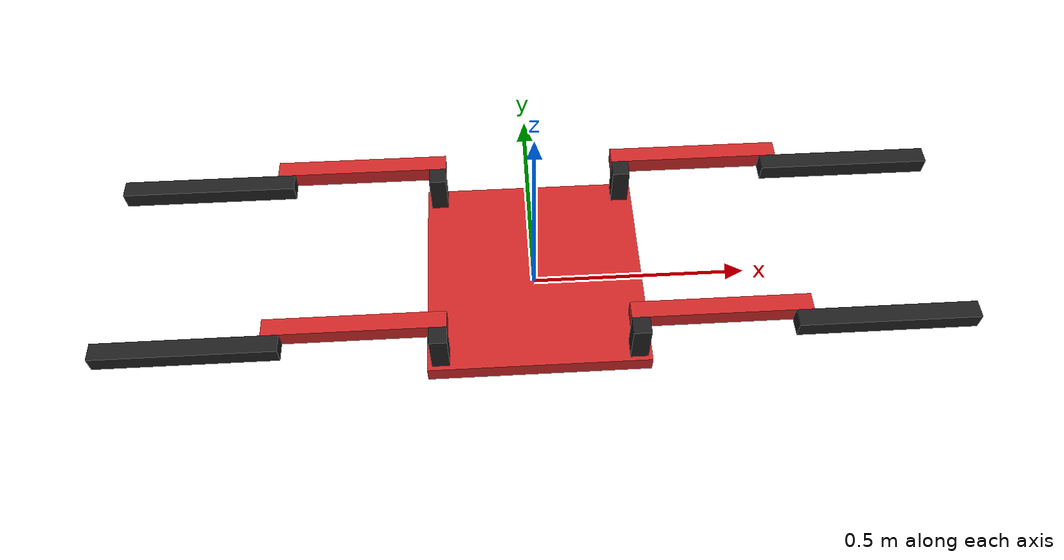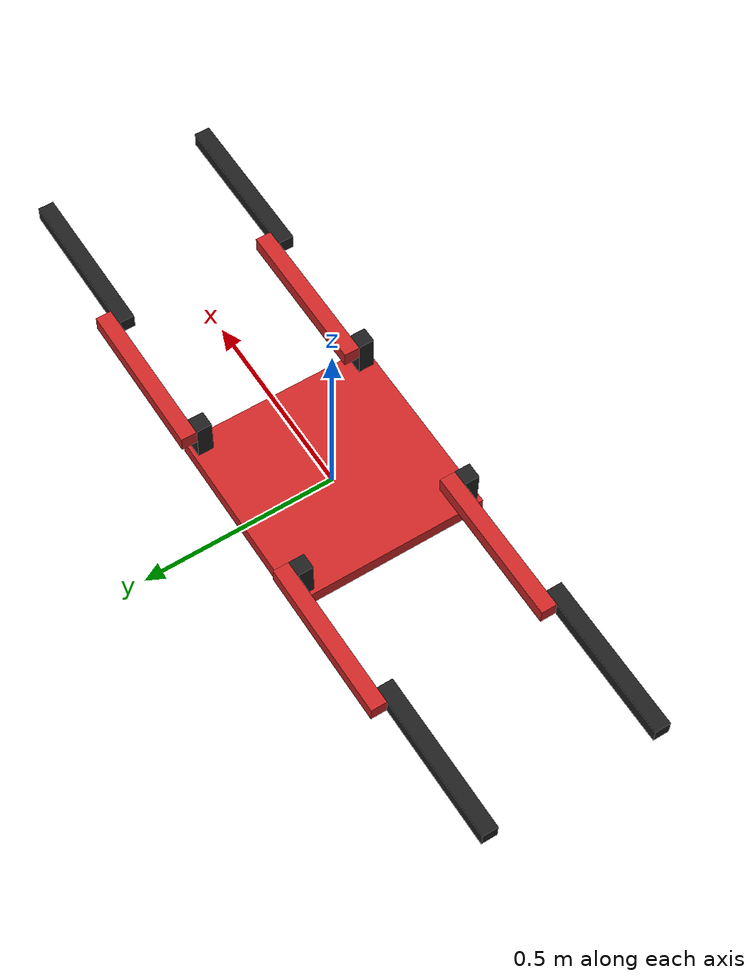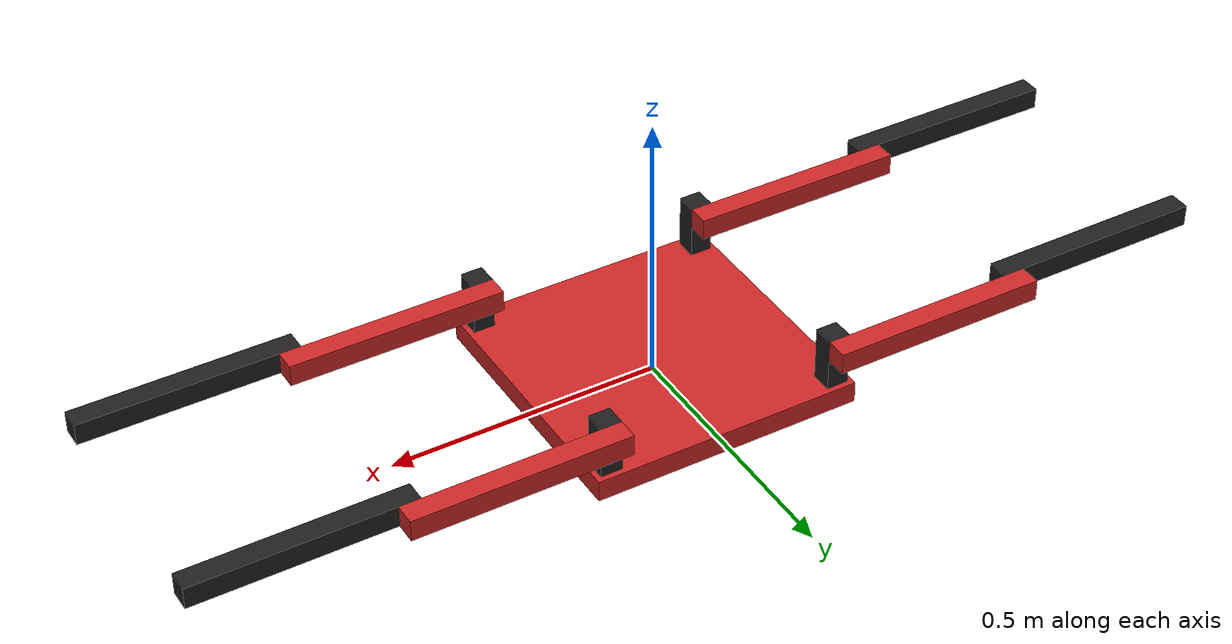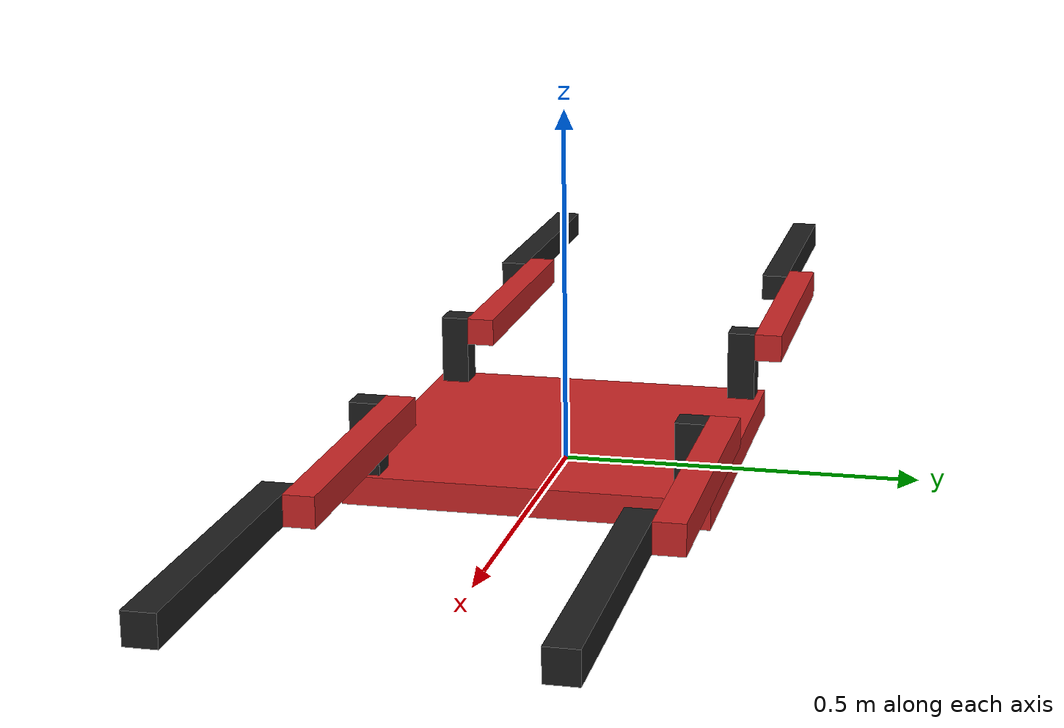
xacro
<?xml version="1.0"?>
<robot xmlns:xacro="http://www.ros.org/wiki/xacro">

	<xacro:include filename="inertial_macros.xacro"/>

	<xacro:property name="damping" value="0.7"/>
	<xacro:property name="friction" value="10"/>
	<xacro:property name="mu1" value="100"/>
	<xacro:property name="mu2" value="100"/>
	<xacro:property name="velocity" value="1"/>
	<xacro:property name="effort" value="1.7"/>
	<xacro:property name="base_mass" value="5"/>
	<xacro:property name="leg_mass" value="1"/>
	<xacro:property name="leg_mass3" value="1"/>
	<xacro:property name="fdir" value="0 0 1"/>

	<link name="base_link">

	</link>

	<!-- STAND -->
	<joint name="stand_joint" type="fixed">
		<parent link="base_link"/>
		<child link="stand_link"/>
		<origin xyz="0 0 0"/>
	</joint>

	<link name="stand_link">
		<visual>
			<origin xyz="0 0 0.02"/>
			<geometry>
				<box size="0.5 0.5 0.04"/>
			</geometry>
		</visual>

		<collision>
			<origin xyz="0 0 0.02"/>
			<geometry>
				<box size="0.5 0.5 0.04"/>
			</geometry>
		</collision>

		<xacro:inertial_box mass="${base_mass}" x="0.5" y="0.5" z="0.04">
			<origin xyz="0 0 0.02" rpy="0 0 0"/>
		</xacro:inertial_box>
	</link>

	<gazebo reference="stand_link">
		<material>Gazebo/Red</material>
		<maxVel>1.0</maxVel>
    	<minDepth>0.01</minDepth>
	</gazebo>

	<!-- LEFT_LEG1_AX1 -->
	<joint name="lleg1_ax1_joint" type="revolute">
		<parent link="stand_link"/>
		<child link="lleg1_ax1_link"/>
		<origin xyz="0.22 0.22 0.12"/>
		<limit effort="${effort}" velocity="${velocity}" lower="${-pi/2}" upper="${pi/2}"/>
		<axis xyz="0 0 1"/>
		<dynamics damping="${damping}" friction="${friction}"/>
	</joint>

	<link name="lleg1_ax1_link">
		<visual>
			<origin xyz="0 0 -0.03"/>
			<geometry>
				<box size="0.04 0.04 0.1"/>
			</geometry>
		</visual>

		<collision>
			<origin xyz="0 0 -0.03"/>
			<geometry>
				<box size="0.04 0.04 0.1"/>
			</geometry>
		</collision>

		<xacro:inertial_box mass="${leg_mass}" x="0.04" y="0.04" z="0.1">
			<origin xyz="0 0 -0.03" rpy="0 0 0"/>
		</xacro:inertial_box>
	</link>

	<gazebo reference="lleg1_ax1_link">
		<material>Gazebo/Black</material>
		<maxVel>1.0</maxVel>
	</gazebo>

	<!-- LEFT_LEG1_AX2 -->
	<joint name="lleg1_ax2_joint" type="revolute">
		<parent link="lleg1_ax1_link"/>
		<child link="lleg1_ax2_link"/>
		<origin xyz="0 0.04 0" rpy="0 ${pi/2} 0"/>
		<limit effort="${effort}" velocity="${velocity}" lower="${-pi/2}" upper="${pi/2}"/>
		<axis xyz="0 1 0"/>
		<dynamics damping="${damping}" friction="${friction}"/>
	</joint>

	<link name="lleg1_ax2_link">
		<visual>
			<origin xyz="0 0 0.18"/>
			<geometry>
				<box size="0.04 0.04 0.4"/>
			</geometry>
		</visual>

		<collision>
			<origin xyz="0 0 0.18"/>
			<geometry>
				<box size="0.04 0.04 0.4"/>
			</geometry>
		</collision>

		<xacro:inertial_box mass="${leg_mass}" x="0.04" y="0.04" z="0.4">
			<origin xyz="0 0 0.18" rpy="0 0 0"/>
		</xacro:inertial_box>
	</link>

	<gazebo reference="lleg1_ax2_link">
		<material>Gazebo/Red</material>
		<maxVel>1.0</maxVel>
	</gazebo>

	<!-- LEFT_LEG1_AX3 -->
	<joint name="lleg1_ax3_joint" type="revolute">
		<parent link="lleg1_ax2_link"/>
		<child link="lleg1_ax3_link"/>
		<origin xyz="0 0 0.36"/>
		<limit effort="${effort}" velocity="${velocity}" lower="${-pi}" upper="${pi}"/>
		<axis xyz="0 1 0"/>
		<dynamics damping="${damping}" friction="${friction}"/>
	</joint>

	<link name="lleg1_ax3_link">
		<visual>
			<origin xyz="0 -0.04 0.18"/>
			<geometry>
				<box size="0.04 0.04 0.4"/>
			</geometry>
		</visual>

		<collision>
			<origin xyz="0 -0.04 0.18"/>
			<geometry>
				<box size="0.04 0.04 0.4"/>
			</geometry>
		</collision>

		<xacro:inertial_box mass="${leg_mass3}" x="0.04" y="0.04" z="0.4">
			<origin xyz="0 -0.04 0.18" rpy="0 0 0"/>
		</xacro:inertial_box>
	</link>

	<gazebo reference="lleg1_ax3_link">
		<material>Gazebo/Black</material>
		<mu1 value="${mu1}"/>
		<mu2 value="${mu2}"/>
		<maxVel>1.0</maxVel>
    	<minDepth>0.04</minDepth>
		<kp>1000000.0</kp>
		<kd>100.0</kd>
	</gazebo>

	<!-- LEFT_LEG2_AX1 -->
	<joint name="lleg2_ax1_joint" type="revolute">
		<parent link="stand_link"/>
		<child link="lleg2_ax1_link"/>
		<origin xyz="0.22 -0.22 0.12"/>
		<limit effort="${effort}" velocity="${velocity}" lower="${-pi/2}" upper="${pi/2}"/>
		<axis xyz="0 0 -1"/>
		<dynamics damping="${damping}" friction="${friction}"/>
	</joint>

	<link name="lleg2_ax1_link">
		<visual>
			<origin xyz="0 0 -0.03"/>
			<geometry>
				<box size="0.04 0.04 0.1"/>
			</geometry>
		</visual>

		<collision>
			<origin xyz="0 0 -0.03"/>
			<geometry>
				<box size="0.04 0.04 0.1"/>
			</geometry>
		</collision>

		<xacro:inertial_box mass="${leg_mass}" x="0.04" y="0.04" z="0.1">
			<origin xyz="0 0 -0.03" rpy="0 0 0"/>
		</xacro:inertial_box>
	</link>

	<gazebo reference="lleg2_ax1_link">
		<material>Gazebo/Black</material>
		<maxVel>1.0</maxVel>
	</gazebo>

	<!-- LEFT_LEG2_AX2 -->
	<joint name="lleg2_ax2_joint" type="revolute">
		<parent link="lleg2_ax1_link"/>
		<child link="lleg2_ax2_link"/>
		<origin xyz="0 0.04 0" rpy="0 ${pi/2} 0"/>
		<limit effort="${effort}" velocity="${velocity}" lower="${-pi/2}" upper="${pi/2}"/>
		<axis xyz="0 1 0"/>
		<dynamics damping="${damping}" friction="${friction}"/>
	</joint>

	<link name="lleg2_ax2_link">
		<visual>
			<origin xyz="0 0 0.18"/>
			<geometry>
				<box size="0.04 0.04 0.4"/>
			</geometry>
		</visual>

		<collision>
			<origin xyz="0 0 0.18"/>
			<geometry>
				<box size="0.04 0.04 0.4"/>
			</geometry>
		</collision>

		<xacro:inertial_box mass="${leg_mass}" x="0.04" y="0.04" z="0.4">
			<origin xyz="0 0 0.18" rpy="0 0 0"/>
		</xacro:inertial_box>
	</link>

	<gazebo reference="lleg2_ax2_link">
		<material>Gazebo/Red</material>
		<maxVel>1.0</maxVel>
	</gazebo>

	<!-- LEFT_LEG2_AX3 -->
	<joint name="lleg2_ax3_joint" type="revolute">
		<parent link="lleg2_ax2_link"/>
		<child link="lleg2_ax3_link"/>
		<origin xyz="0 0 0.36"/>
		<limit effort="${effort}" velocity="${velocity}" lower="${-pi}" upper="${pi}"/>
		<axis xyz="0 1 0"/>
		<dynamics damping="${damping}" friction="${friction}"/>
	</joint>

	<link name="lleg2_ax3_link">
		<visual>
			<origin xyz="0 -0.04 0.18"/>
			<geometry>
				<box size="0.04 0.04 0.4"/>
			</geometry>
		</visual>

		<collision>
			<origin xyz="0 -0.04 0.18"/>
			<geometry>
				<box size="0.04 0.04 0.4"/>
			</geometry>
		</collision>

		<xacro:inertial_box mass="${leg_mass3}" x="0.04" y="0.04" z="0.4">
			<origin xyz="0 -0.04 0.18" rpy="0 0 0"/>
		</xacro:inertial_box>
	</link>

	<gazebo reference="lleg2_ax3_link">
		<material>Gazebo/Black</material>
		<mu1 value="${mu1}"/>
		<mu2 value="${mu2}"/>
		<maxVel>1.0</maxVel>
    	<minDepth>0.04</minDepth>
		<kp>1000000.0</kp>
		<kd>100.0</kd>
	</gazebo>

	<!-- RIGHT_LEG1_AX1 -->
	<joint name="rleg1_ax1_joint" type="revolute">
		<parent link="stand_link"/>
		<child link="rleg1_ax1_link"/>
		<origin xyz="-0.22 0.22 0.12"/>
		<limit effort="${effort}" velocity="${velocity}" lower="${-pi/2}" upper="${pi/2}"/>
		<axis xyz="0 0 -1"/>
		<dynamics damping="${damping}" friction="${friction}"/>
	</joint>

	<link name="rleg1_ax1_link">
		<visual>
			<origin xyz="0 0 -0.03"/>
			<geometry>
				<box size="0.04 0.04 0.1"/>
			</geometry>
		</visual>

		<collision>
			<origin xyz="0 0 -0.03"/>
			<geometry>
				<box size="0.04 0.04 0.1"/>
			</geometry>
		</collision>

		<xacro:inertial_box mass="${leg_mass}" x="0.04" y="0.04" z="0.1">
			<origin xyz="0 0 -0.03" rpy="0 0 0"/>
		</xacro:inertial_box>
	</link>

	<gazebo reference="rleg1_ax1_link">
		<material>Gazebo/Black</material>
		<maxVel>1.0</maxVel>
	</gazebo>

	<!-- RIGHT_LEG1_AX2 -->
	<joint name="rleg1_ax2_joint" type="revolute">
		<parent link="rleg1_ax1_link"/>
		<child link="rleg1_ax2_link"/>
		<origin xyz="0 0.04 0" rpy="0 ${-pi/2} 0"/>
		<limit effort="${effort}" velocity="${velocity}" lower="${-pi/2}" upper="${pi/2}"/>
		<axis xyz="0 -1 0"/>
		<dynamics damping="${damping}" friction="${friction}"/>
	</joint>

	<link name="rleg1_ax2_link">
		<visual>
			<origin xyz="0 0 0.18"/>
			<geometry>
				<box size="0.04 0.04 0.4"/>
			</geometry>
		</visual>

		<collision>
			<origin xyz="0 0 0.18"/>
			<geometry>
				<box size="0.04 0.04 0.4"/>
			</geometry>
		</collision>

		<xacro:inertial_box mass="${leg_mass}" x="0.04" y="0.04" z="0.4">
			<origin xyz="0 0 0.18" rpy="0 0 0"/>
		</xacro:inertial_box>
	</link>

	<gazebo reference="rleg1_ax2_link">
		<material>Gazebo/Red</material>
		<maxVel>1.0</maxVel>
	</gazebo>

	<!-- RIGHT_LEG1_AX3 -->
	<joint name="rleg1_ax3_joint" type="revolute">
		<parent link="rleg1_ax2_link"/>
		<child link="rleg1_ax3_link"/>
		<origin xyz="0 0 0.36"/>
		<limit effort="${effort}" velocity="${velocity}" lower="${-pi}" upper="${pi}"/>
		<axis xyz="0 -1 0"/>
		<dynamics damping="${damping}" friction="${friction}"/>
	</joint>

	<link name="rleg1_ax3_link">
		<visual>
			<origin xyz="0 -0.04 0.18"/>
			<geometry>
				<box size="0.04 0.04 0.4"/>
			</geometry>
		</visual>

		<collision>
			<origin xyz="0 -0.04 0.18"/>
			<geometry>
				<box size="0.04 0.04 0.4"/>
			</geometry>
		</collision>

		<xacro:inertial_box mass="${leg_mass3}" x="0.04" y="0.04" z="0.4">
			<origin xyz="0 -0.04 0.18" rpy="0 0 0"/>
		</xacro:inertial_box>
	</link>

	<gazebo reference="rleg1_ax3_link">
		<material>Gazebo/Black</material>
		<mu1 value="${mu1}"/>
		<mu2 value="${mu2}"/>
		<maxVel>1.0</maxVel>
    	<minDepth>0.04</minDepth>
		<kp>1000000.0</kp>
		<kd>100.0</kd>
	</gazebo>

	<!-- RIGHT_LEG2_AX1 -->
	<joint name="rleg2_ax1_joint" type="revolute">
		<parent link="stand_link"/>
		<child link="rleg2_ax1_link"/>
		<origin xyz="-0.22 -0.22 0.12"/>
		<limit effort="${effort}" velocity="${velocity}" lower="${-pi/2}" upper="${pi/2}"/>
		<axis xyz="0 0 1"/>
		<dynamics damping="${damping}" friction="${friction}"/>
	</joint>

	<link name="rleg2_ax1_link">
		<visual>
			<origin xyz="0 0 -0.03"/>
			<geometry>
				<box size="0.04 0.04 0.1"/>
			</geometry>
		</visual>

		<collision>
			<origin xyz="0 0 -0.03"/>
			<geometry>
				<box size="0.04 0.04 0.1"/>
			</geometry>
		</collision>

		<xacro:inertial_box mass="${leg_mass}" x="0.04" y="0.04" z="0.1">
			<origin xyz="0 0 -0.03" rpy="0 0 0"/>
		</xacro:inertial_box>
	</link>

	<gazebo reference="rleg2_ax1_link">
		<material>Gazebo/Black</material>
		<maxVel>1.0</maxVel>
	</gazebo>

	<!-- RIGHT_LEG2_AX2 -->
	<joint name="rleg2_ax2_joint" type="revolute">
		<parent link="rleg2_ax1_link"/>
		<child link="rleg2_ax2_link"/>
		<origin xyz="0 0.04 0" rpy="0 ${-pi/2} 0"/>
		<limit effort="${effort}" velocity="${velocity}" lower="${-pi/2}" upper="${pi/2}"/>
		<axis xyz="0 -1 0"/>
		<dynamics damping="${damping}" friction="${friction}"/>
	</joint>

	<link name="rleg2_ax2_link">
		<visual>
			<origin xyz="0 0 0.18"/>
			<geometry>
				<box size="0.04 0.04 0.4"/>
			</geometry>
		</visual>

		<collision>
			<origin xyz="0 0 0.18"/>
			<geometry>
				<box size="0.04 0.04 0.4"/>
			</geometry>
		</collision>

		<xacro:inertial_box mass="${leg_mass}" x="0.04" y="0.04" z="0.4">
			<origin xyz="0 0 0.18" rpy="0 0 0"/>
		</xacro:inertial_box>
	</link>

	<gazebo reference="rleg2_ax2_link">
		<material>Gazebo/Red</material>
		<maxVel>1.0</maxVel>
	</gazebo>

	<!-- RIGHT_LEG2_AX3 -->
	<joint name="rleg2_ax3_joint" type="revolute">
		<parent link="rleg2_ax2_link"/>
		<child link="rleg2_ax3_link"/>
		<origin xyz="0 0 0.36"/>
		<limit effort="${effort}" velocity="${velocity}" lower="${-pi}" upper="${pi}"/>
		<axis xyz="0 -1 0"/>
		<dynamics damping="${damping}" friction="${friction}"/>
	</joint>

	<link name="rleg2_ax3_link">
		<visual>
			<origin xyz="0 -0.04 0.18"/>
			<geometry>
				<box size="0.04 0.04 0.4"/>
			</geometry>
		</visual>

		<collision>
			<origin xyz="0 -0.04 0.18"/>
			<geometry>
				<box size="0.04 0.04 0.4"/>
			</geometry>
		</collision>

		<xacro:inertial_box mass="${leg_mass3}" x="0.04" y="0.04" z="0.4">
			<origin xyz="0 -0.04 0.18" rpy="0 0 0"/>
		</xacro:inertial_box>
	</link>

	<gazebo reference="rleg2_ax3_link">
		<material>Gazebo/Black</material>
		<mu1 value="${mu1}"/>
		<mu2 value="${mu2}"/>
		<maxVel>1.0</maxVel>
    	<minDepth>0.04</minDepth>
		<kp>1000000.0</kp>
 		<kd>100.0</kd>
	</gazebo>

	<ros2_control name="GazeboSystem" type="system">
        <hardware>
            <plugin>gazebo_ros2_control/GazeboSystem</plugin>
        </hardware>

        <joint name="lleg1_ax1_joint">
            <command_interface name="position">
                <param name="min">${-pi/2}</param>
                <param name="max">${pi/2}</param>
            </command_interface>
			<command_interface name="velocity">
        		<param name="min">-1</param>
        		<param name="max">1</param>
      		</command_interface>
      		<command_interface name="effort">
        		<param name="min">-0.5</param>
        		<param name="max">0.5</param>
      		</command_interface>
			<command_interface name="Kp"/>
      		<command_interface name="Kd"/>
      		<command_interface name="effort_limit"/>
            <state_interface name="position">
                <param name="initial_value">${0}</param>
            </state_interface>
            <state_interface name="velocity"/>
            <state_interface name="effort"/>
			<state_interface name="contact_information"/>
        </joint>

		<joint name="lleg1_ax2_joint">
            <command_interface name="position">
                <param name="min">${-pi/2}</param>
                <param name="max">${pi/2}</param>
            </command_interface>
			<command_interface name="velocity">
        		<param name="min">-1</param>
        		<param name="max">1</param>
      		</command_interface>
      		<command_interface name="effort">
        		<param name="min">-0.5</param>
        		<param name="max">0.5</param>
      		</command_interface>
			<command_interface name="Kp"/>
      		<command_interface name="Kd"/>
      		<command_interface name="effort_limit"/>
            <state_interface name="position">
                <param name="initial_value">${0}</param>
            </state_interface>
            <state_interface name="velocity"/>
            <state_interface name="effort"/>
			<state_interface name="contact_information"/>
        </joint>

		<joint name="lleg1_ax3_joint">
            <command_interface name="position">
                <param name="min">${-pi}</param>
                <param name="max">${pi}</param>
            </command_interface>
			<command_interface name="velocity">
        		<param name="min">-1</param>
        		<param name="max">1</param>
      		</command_interface>
      		<command_interface name="effort">
        		<param name="min">-0.5</param>
        		<param name="max">0.5</param>
      		</command_interface>
			<command_interface name="Kp"/>
      		<command_interface name="Kd"/>
      		<command_interface name="effort_limit"/>
            <state_interface name="position">
                <param name="initial_value">${0}</param>
            </state_interface>
            <state_interface name="velocity"/>
            <state_interface name="effort"/>
			<state_interface name="contact_information"/>
        </joint>

		<joint name="lleg2_ax1_joint">
            <command_interface name="position">
                <param name="min">${-pi/2}</param>
                <param name="max">${pi/2}</param>
            </command_interface>
			<command_interface name="velocity">
        		<param name="min">-1</param>
        		<param name="max">1</param>
      		</command_interface>
      		<command_interface name="effort">
        		<param name="min">-0.5</param>
        		<param name="max">0.5</param>
      		</command_interface>
			<command_interface name="Kp"/>
      		<command_interface name="Kd"/>
      		<command_interface name="effort_limit"/>
            <state_interface name="position">
                <param name="initial_value">${0}</param>
            </state_interface>
            <state_interface name="velocity"/>
            <state_interface name="effort"/>
			<state_interface name="contact_information"/>
        </joint>

		<joint name="lleg2_ax2_joint">
            <command_interface name="position">
                <param name="min">${-pi/2}</param>
                <param name="max">${pi/2}</param>
            </command_interface>
			<command_interface name="velocity">
        		<param name="min">-1</param>
        		<param name="max">1</param>
      		</command_interface>
      		<command_interface name="effort">
        		<param name="min">-0.5</param>
        		<param name="max">0.5</param>
      		</command_interface>
			<command_interface name="Kp"/>
      		<command_interface name="Kd"/>
      		<command_interface name="effort_limit"/>
            <state_interface name="position">
                <param name="initial_value">${0}</param>
            </state_interface>
            <state_interface name="velocity"/>
            <state_interface name="effort"/>
			<state_interface name="contact_information"/>
        </joint>

		<joint name="lleg2_ax3_joint">
            <command_interface name="position">
                <param name="min">${-pi}</param>
                <param name="max">${pi}</param>
            </command_interface>
			<command_interface name="velocity">
        		<param name="min">-1</param>
        		<param name="max">1</param>
      		</command_interface>
      		<command_interface name="effort">
        		<param name="min">-0.5</param>
        		<param name="max">0.5</param>
      		</command_interface>
			<command_interface name="Kp"/>
      		<command_interface name="Kd"/>
      		<command_interface name="effort_limit"/>
            <state_interface name="position">
                <param name="initial_value">${0}</param>
            </state_interface>
            <state_interface name="velocity"/>
            <state_interface name="effort"/>
			<state_interface name="contact_information"/>
        </joint>

		<joint name="rleg1_ax1_joint">
            <command_interface name="position">
                <param name="min">${-pi/2}</param>
                <param name="max">${pi/2}</param>
            </command_interface>
			<command_interface name="velocity">
        		<param name="min">-1</param>
        		<param name="max">1</param>
      		</command_interface>
      		<command_interface name="effort">
        		<param name="min">-0.5</param>
        		<param name="max">0.5</param>
      		</command_interface>
			<command_interface name="Kp"/>
     		<command_interface name="Kd"/>
      		<command_interface name="effort_limit"/>
            <state_interface name="position">
                <param name="initial_value">${0}</param>
            </state_interface>
            <state_interface name="velocity"/>
            <state_interface name="effort"/>
			<state_interface name="contact_information"/>
        </joint>

		<joint name="rleg1_ax2_joint">
            <command_interface name="position">
                <param name="min">${-pi/2}</param>
                <param name="max">${pi/2}</param>
            </command_interface>
			<command_interface name="velocity">
        		<param name="min">-1</param>
        		<param name="max">1</param>
      		</command_interface>
      		<command_interface name="effort">
        		<param name="min">-0.5</param>
        		<param name="max">0.5</param>
      		</command_interface>
			<command_interface name="Kp"/>
      		<command_interface name="Kd"/>
      		<command_interface name="effort_limit"/>
            <state_interface name="position">
                <param name="initial_value">${0}</param>
            </state_interface>
            <state_interface name="velocity"/>
            <state_interface name="effort"/>
			<state_interface name="contact_information"/>
        </joint>

		<joint name="rleg1_ax3_joint">
            <command_interface name="position">
                <param name="min">${-pi}</param>
                <param name="max">${pi}</param>
            </command_interface>
			<command_interface name="velocity">
        		<param name="min">-1</param>
        		<param name="max">1</param>
      		</command_interface>
      		<command_interface name="effort">
        		<param name="min">-0.5</param>
        		<param name="max">0.5</param>
      		</command_interface>
			<command_interface name="Kp"/>
      		<command_interface name="Kd"/>
      		<command_interface name="effort_limit"/>
            <state_interface name="position">
                <param name="initial_value">${0}</param>
            </state_interface>
            <state_interface name="velocity"/>
            <state_interface name="effort"/>
			<state_interface name="contact_information"/>
        </joint>

		<joint name="rleg2_ax1_joint">
            <command_interface name="position">
                <param name="min">${-pi/2}</param>
                <param name="max">${pi/2}</param>
            </command_interface>
			<command_interface name="velocity">
        		<param name="min">-1</param>
        		<param name="max">1</param>
      		</command_interface>
      		<command_interface name="effort">
        		<param name="min">-0.5</param>
        		<param name="max">0.5</param>
      		</command_interface>
			<command_interface name="Kp"/>
      		<command_interface name="Kd"/>
      		<command_interface name="effort_limit"/>
            <state_interface name="position">
                <param name="initial_value">${0}</param>
            </state_interface>
            <state_interface name="velocity"/>
            <state_interface name="effort"/>
			<state_interface name="contact_information"/>
        </joint>

		<joint name="rleg2_ax2_joint">
            <command_interface name="position">
                <param name="min">${-pi/2}</param>
                <param name="max">${pi/2}</param>
            </command_interface>
			<command_interface name="velocity">
        		<param name="min">-1</param>
        		<param name="max">1</param>
      		</command_interface>
      		<command_interface name="effort">
        		<param name="min">-0.5</param>
        		<param name="max">0.5</param>
      		</command_interface>
			<command_interface name="Kp"/>
      		<command_interface name="Kd"/>
      		<command_interface name="effort_limit"/>
            <state_interface name="position">
                <param name="initial_value">${0}</param>
            </state_interface>
            <state_interface name="velocity"/>
            <state_interface name="effort"/>
			<state_interface name="contact_information"/>
        </joint>

		<joint name="rleg2_ax3_joint">
            <command_interface name="position">
                <param name="min">${-pi}</param>
                <param name="max">${pi}</param>
            </command_interface>
			<command_interface name="velocity">
        		<param name="min">-1</param>
        		<param name="max">1</param>
      		</command_interface>
      		<command_interface name="effort">
        		<param name="min">-0.5</param>
        		<param name="max">0.5</param>
      		</command_interface>
			<command_interface name="Kp"/>
      		<command_interface name="Kd"/>
      		<command_interface name="effort_limit"/>
            <state_interface name="position">
                <param name="initial_value">${0}</param>
            </state_interface>
            <state_interface name="velocity"/>
            <state_interface name="effort"/>
			<state_interface name="contact_information"/>
        </joint>
	</ros2_control>

</robot>
